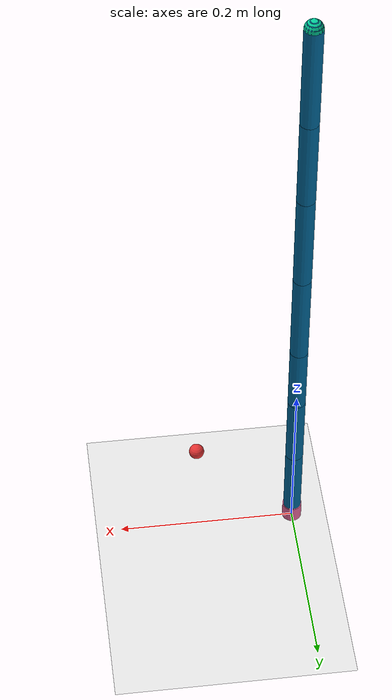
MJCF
<mujoco model="reacher">
  <compiler angle="radian" inertiafromgeom="true"/>
  <option timestep="0.01" gravity="0 0 -9.81" integrator="RK4"/>
  <default>
    <default class="/">
      <joint limited="true" armature="1" damping="1"/>
      <geom contype="0" rgba="0.7 0.7 0 1" friction="1 0.1 0.1"/>
    </default>
  </default>
  <custom>
    <numeric name="ndims" size="1" data="3"/>
    <numeric name="njoints" size="1" data="7"/>
  </custom>
  <worldbody>
    <geom name="ground" class="/" type="plane" contype="0" conaffinity="0" size="1 1 10" rgba="0.9 0.9 0.9 1" pos="0 0 0"/>
    <geom name="root" class="/" type="cylinder" contype="0" conaffinity="0" size="0.011" rgba="0.9 0.4 0.6 1" fromto="0 0 0 0 0 0.02"/>
    <body name="base" pos="0 0 0.01">
      <geom name="link0" class="/" type="capsule" size="0.01" rgba="0 0.4 0.6 1" fromto="0 0 0 0 0 0.09691"/>
      <joint name="j0" class="/" type="hinge" pos="0 0 0" axis="0 0 1" limited="true" range="-3 3"/>
      <body name="j0" pos="0 0 0.09691">
        <geom name="link1" class="/" type="capsule" size="0.01" rgba="0 0.4 0.6 1" fromto="0 0 0 0 0 0.08841"/>
        <joint name="j1" class="/" type="hinge" pos="0 0 0" axis="1 0 0" limited="true" range="-3 3"/>
        <body name="j1" pos="0 0 0.08841">
          <geom name="link2" class="/" type="capsule" size="0.01" rgba="0 0.4 0.6 1" fromto="0 0 0 0 0 0.08132"/>
          <joint name="j2" class="/" type="hinge" pos="0 0 0" axis="0 0 1" limited="true" range="-3 3"/>
          <body name="j2" pos="0 0 0.08132">
            <geom name="link3" class="/" type="capsule" size="0.01" rgba="0 0.4 0.6 1" fromto="0 0 0 0 0 0.1097"/>
            <joint name="j3" class="/" type="hinge" pos="0 0 0" axis="1 0 0" limited="true" range="-3 3"/>
            <body name="j3" pos="0 0 0.1097">
              <geom name="link4" class="/" type="capsule" size="0.01" rgba="0 0.4 0.6 1" fromto="0 0 0 0 0 0.1127"/>
              <joint name="j4" class="/" type="hinge" pos="0 0 0" axis="0 0 1" limited="true" range="-3 3"/>
              <body name="j4" pos="0 0 0.1127">
                <geom name="link5" class="/" type="capsule" size="0.01" rgba="0 0.4 0.6 1" fromto="0 0 0 0 0 0.1013"/>
                <joint name="j5" class="/" type="hinge" pos="0 0 0" axis="1 0 0" limited="true" range="-3 3"/>
                <body name="j5" pos="0 0 0.1013">
                  <geom name="link6" class="/" type="capsule" size="0.01" rgba="0 0.4 0.6 1" fromto="0 0 0 0 0 0.1157"/>
                  <joint name="j6" class="/" type="hinge" pos="0 0 0" axis="0 1 0" limited="true" range="-3 3"/>
                  <body name="j6" pos="0 0 0.1157">
                    <geom name="fingertip" class="/" type="sphere" contype="0" size="0.01" rgba="0 0.8 0.6 1" pos="0 0 0"/>
                  </body>
                </body>
              </body>
            </body>
          </body>
        </body>
      </body>
    </body>
    <body name="target" pos="0.1 -0.1 0.01" gravcomp="1">
      <joint name="target_x" class="/" type="slide" pos="0 0 0" axis="1 0 0" limited="false" armature="0" damping="0"/>
      <joint name="target_y" class="/" type="slide" pos="0 0 0" axis="0 1 0" limited="false" armature="0" damping="0"/>
      <joint name="target_z" class="/" type="slide" pos="0 0 0" axis="0 0 1" limited="false" armature="0" damping="0"/>
      <geom name="target" class="/" type="sphere" contype="0" conaffinity="0" size="0.009" rgba="0.9 0.2 0.2 1" pos="0 0 0"/>
    </body>
  </worldbody>
  <actuator>
    <motor name="//unnamed_actuator_0" class="/" ctrllimited="true" ctrlrange="-1 1" gear="200" joint="j0"/>
    <motor name="//unnamed_actuator_1" class="/" ctrllimited="true" ctrlrange="-1 1" gear="200" joint="j1"/>
    <motor name="//unnamed_actuator_2" class="/" ctrllimited="true" ctrlrange="-1 1" gear="200" joint="j2"/>
    <motor name="//unnamed_actuator_3" class="/" ctrllimited="true" ctrlrange="-1 1" gear="200" joint="j3"/>
    <motor name="//unnamed_actuator_4" class="/" ctrllimited="true" ctrlrange="-1 1" gear="200" joint="j4"/>
    <motor name="//unnamed_actuator_5" class="/" ctrllimited="true" ctrlrange="-1 1" gear="200" joint="j5"/>
    <motor name="//unnamed_actuator_6" class="/" ctrllimited="true" ctrlrange="-1 1" gear="200" joint="j6"/>
  </actuator>
</mujoco>
